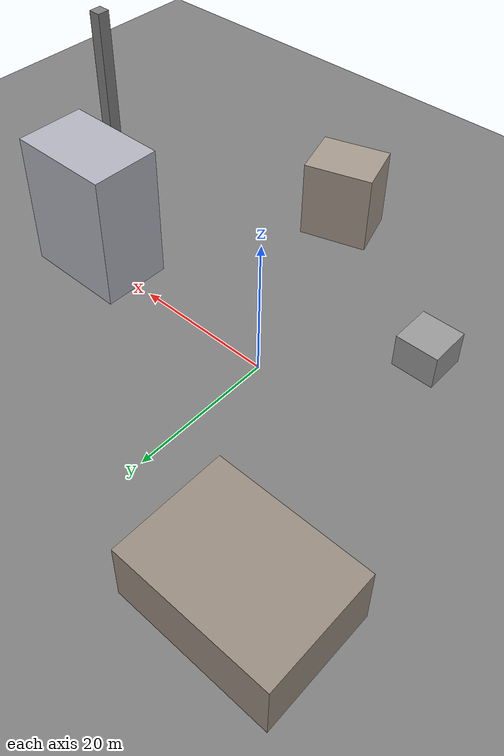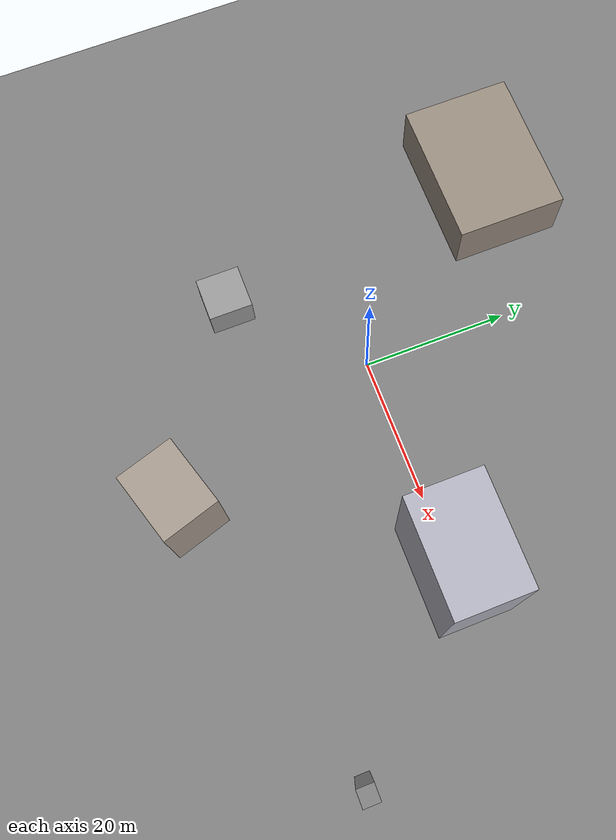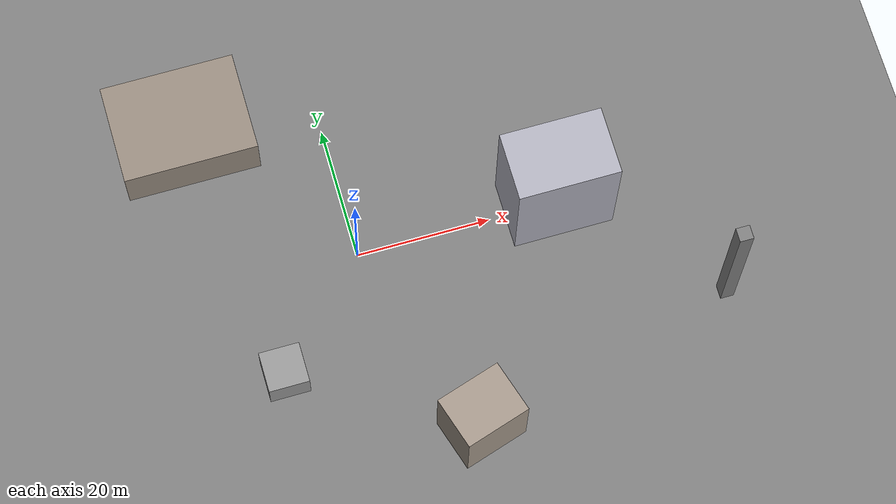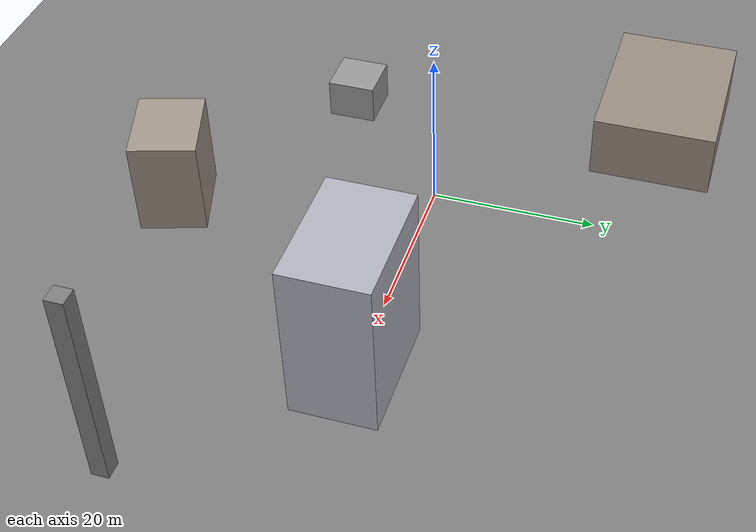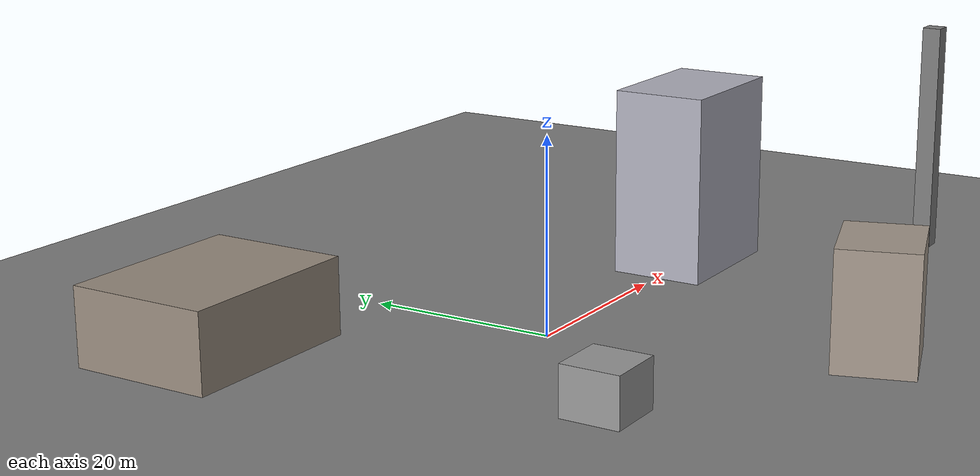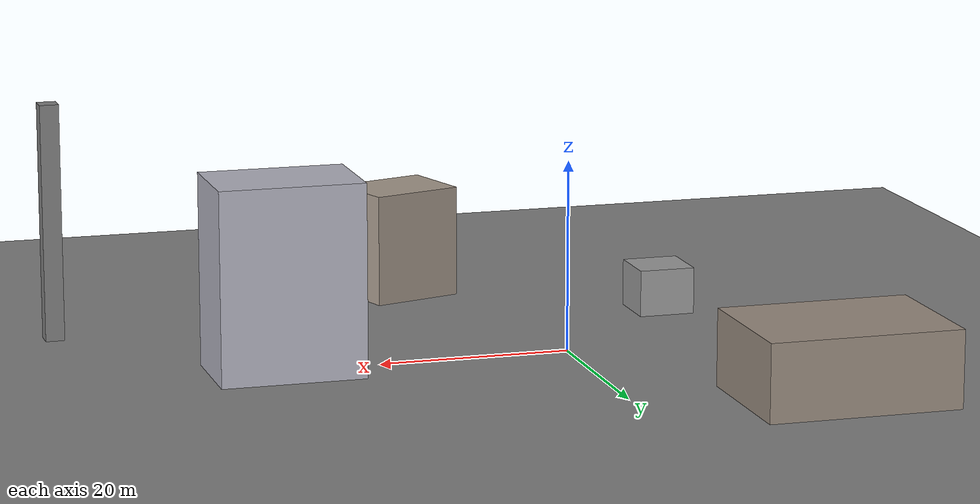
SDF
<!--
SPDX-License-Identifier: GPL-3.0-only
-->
<sdf version="1.9">
 <world name="ados_urban">
  <physics name="1ms" type="ignore">
   <max_step_size>0.001</max_step_size>
   <real_time_factor>1.0</real_time_factor>
  </physics>
  <plugin filename="gz-sim-physics-system" name="gz::sim::systems::Physics"/>
  <plugin filename="gz-sim-sensors-system" name="gz::sim::systems::Sensors">
   <render_engine>ogre2</render_engine>
  </plugin>
  <plugin filename="gz-sim-user-commands-system" name="gz::sim::systems::UserCommands"/>
  <plugin filename="gz-sim-scene-broadcaster-system" name="gz::sim::systems::SceneBroadcaster"/>
  <plugin filename="gz-sim-imu-system" name="gz::sim::systems::Imu"/>
  <plugin filename="gz-sim-navsat-system" name="gz::sim::systems::NavSat"/>
  <scene><ambient>1.0 1.0 1.0</ambient><background>0.8 0.8 0.8</background></scene>
  <spherical_coordinates>
   <latitude_deg>12.9716</latitude_deg>
   <longitude_deg>77.5946</longitude_deg>
   <elevation>920</elevation>
   <heading_deg>0</heading_deg>
   <surface_model>EARTH_WGS84</surface_model>
  </spherical_coordinates>
  <light type="directional" name="sun">
   <pose>0 0 10 0 0 0</pose>
   <diffuse>0.8 0.8 0.8 1</diffuse>
   <specular>0.8 0.8 0.8 1</specular>
   <attenuation>
    <range>1000</range>
    <constant>0.9</constant>
    <linear>0.01</linear>
    <quadratic>0.001</quadratic>
   </attenuation>
   <direction>-0.5 0.1 -0.9</direction>
  </light>
  <model name="ground_plane">
   <static>true</static>
   <link name="link">
    <collision name="collision">
     <geometry><plane><normal>0 0 1</normal><size>500 500</size></plane></geometry>
    </collision>
    <visual name="visual">
     <geometry><plane><normal>0 0 1</normal><size>500 500</size></plane></geometry>
     <material><ambient>0.4 0.4 0.4 1</ambient><diffuse>0.5 0.5 0.5 1</diffuse></material>
    </visual>
   </link>
  </model>
  <model name="building_1">
   <static>true</static>
   <pose>30 0 10 0 0 0</pose>
   <link name="link">
    <collision name="collision"><geometry><box><size>15 10 20</size></box></geometry></collision>
    <visual name="visual">
     <geometry><box><size>15 10 20</size></box></geometry>
     <material><ambient>0.6 0.6 0.65 1</ambient><diffuse>0.7 0.7 0.75 1</diffuse></material>
    </visual>
   </link>
  </model>
  <model name="building_2">
   <static>true</static>
   <pose>-20 25 4 0 0 0</pose>
   <link name="link">
    <collision name="collision"><geometry><box><size>20 15 8</size></box></geometry></collision>
    <visual name="visual">
     <geometry><box><size>20 15 8</size></box></geometry>
     <material><ambient>0.5 0.45 0.4 1</ambient><diffuse>0.6 0.55 0.5 1</diffuse></material>
    </visual>
   </link>
  </model>
  <model name="building_3">
   <static>true</static>
   <pose>10 -30 6 0 0 0.3</pose>
   <link name="link">
    <collision name="collision"><geometry><box><size>10 8 12</size></box></geometry></collision>
    <visual name="visual">
     <geometry><box><size>10 8 12</size></box></geometry>
     <material><ambient>0.55 0.5 0.45 1</ambient><diffuse>0.65 0.6 0.55 1</diffuse></material>
    </visual>
   </link>
  </model>
  <model name="building_4">
   <static>true</static>
   <pose>-15 -15 2.5 0 0 0</pose>
   <link name="link">
    <collision name="collision"><geometry><box><size>6 6 5</size></box></geometry></collision>
    <visual name="visual">
     <geometry><box><size>6 6 5</size></box></geometry>
     <material><ambient>0.5 0.5 0.5 1</ambient><diffuse>0.6 0.6 0.6 1</diffuse></material>
    </visual>
   </link>
  </model>
  <model name="power_tower">
   <static>true</static>
   <pose>50 -20 12.5 0 0 0</pose>
   <link name="link">
    <collision name="collision"><geometry><box><size>2 2 25</size></box></geometry></collision>
    <visual name="visual">
     <geometry><box><size>2 2 25</size></box></geometry>
     <material><ambient>0.4 0.4 0.4 1</ambient><diffuse>0.5 0.5 0.5 1</diffuse></material>
    </visual>
   </link>
  </model>
  <model name="axes">
   <static>1</static>
   <link name="link">
    <visual name="r">
     <cast_shadows>0</cast_shadows>
     <pose>5 0 0.1 0 0 0</pose>
     <geometry><box><size>10 0.01 0.01</size></box></geometry>
     <material><ambient>1 0 0 0.8</ambient><diffuse>1 0 0 0.8</diffuse><emissive>1 0 0 0.8</emissive></material>
    </visual>
    <visual name="g">
     <cast_shadows>0</cast_shadows>
     <pose>0 5 0.1 0 0 0</pose>
     <geometry><box><size>0.01 10 0.01</size></box></geometry>
     <material><ambient>0 1 0 0.8</ambient><diffuse>0 1 0 0.8</diffuse><emissive>0 1 0 0.8</emissive></material>
    </visual>
    <visual name="b">
     <cast_shadows>0</cast_shadows>
     <pose>0 0 5.1 0 0 0</pose>
     <geometry><box><size>0.01 0.01 10</size></box></geometry>
     <material><ambient>0 0 1 0.8</ambient><diffuse>0 0 1 0.8</diffuse><emissive>0 0 1 0.8</emissive></material>
    </visual>
    <sensor name="navsat_sensor" type="navsat"><always_on>1</always_on><update_rate>1</update_rate></sensor>
   </link>
  </model>
 </world>
</sdf>
